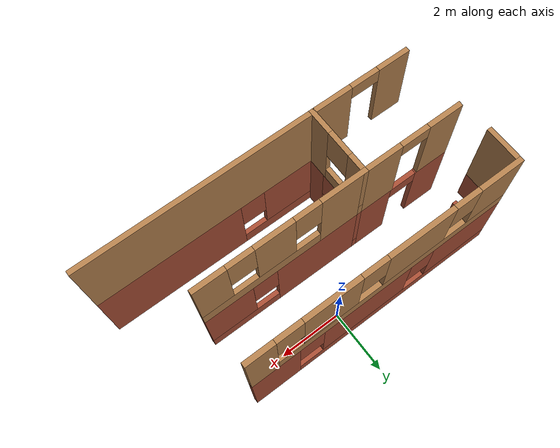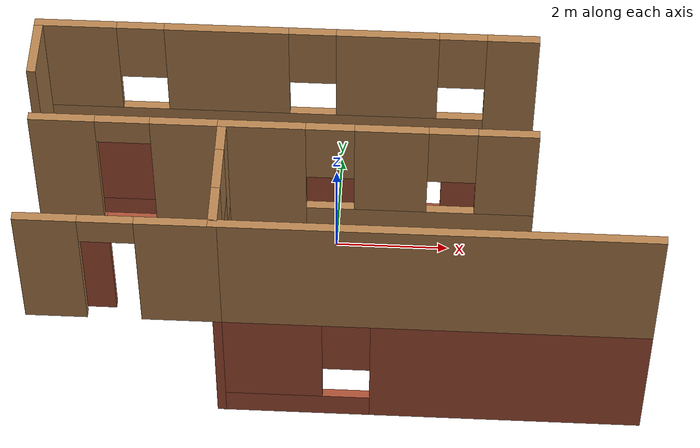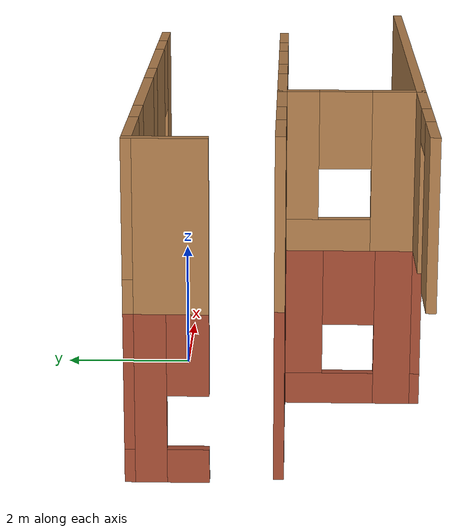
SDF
<sdf version="1.7">
 <model name="House">
  <pose>3.17663 -1.38106 0 0 -0 0</pose>
  <link name="Wall_10">
   <pose>-2.425 -0.166792 0 0 -0 0</pose>
   <visual name="Wall_10_Visual_0">
    <pose>-1.18064 0 1.25 0 -0 0</pose>
    <geometry><box><size>2.88872 0.15 2.5</size></box></geometry>
    <material>
     <script><uri>file://media/materials/scripts/gazebo.material</uri><name>Gazebo/Bricks</name></script>
     <ambient>0.921569 0.807843 0.615686 1</ambient>
    </material>
    <meta><layer>0</layer></meta>
   </visual>
   <collision name="Wall_10_Collision_0">
    <geometry><box><size>2.88872 0.15 2.5</size></box></geometry>
    <pose>-1.18064 0 1.25 0 -0 0</pose>
   </collision>
   <visual name="Wall_10_Visual_1">
    <pose>1.44436 0 0.25 0 -0 0</pose>
    <geometry><box><size>2.36128 0.15 0.5</size></box></geometry>
    <material>
     <script><uri>file://media/materials/scripts/gazebo.material</uri><name>Gazebo/Bricks</name></script>
     <ambient>0.921569 0.807843 0.615686 1</ambient>
    </material>
    <meta><layer>0</layer></meta>
   </visual>
   <collision name="Wall_10_Collision_1">
    <geometry><box><size>2.36128 0.15 0.5</size></box></geometry>
    <pose>1.44436 0 0.25 0 -0 0</pose>
   </collision>
   <visual name="Wall_10_Visual_2">
    <pose>1.84436 0 1.5 0 -0 0</pose>
    <geometry><box><size>1.56128 0.15 2</size></box></geometry>
    <material>
     <script><uri>file://media/materials/scripts/gazebo.material</uri><name>Gazebo/Bricks</name></script>
     <ambient>0.921569 0.807843 0.615686 1</ambient>
    </material>
    <meta><layer>0</layer></meta>
   </visual>
   <collision name="Wall_10_Collision_2">
    <geometry><box><size>1.56128 0.15 2</size></box></geometry>
    <pose>1.84436 0 1.5 0 -0 0</pose>
   </collision>
   <visual name="Wall_10_Visual_3">
    <pose>0.663719 0 1.9 0 -0 0</pose>
    <geometry><box><size>0.8 0.15 1.2</size></box></geometry>
    <material>
     <script><uri>file://media/materials/scripts/gazebo.material</uri><name>Gazebo/Bricks</name></script>
     <ambient>0.921569 0.807843 0.615686 1</ambient>
    </material>
    <meta><layer>0</layer></meta>
   </visual>
   <collision name="Wall_10_Collision_3">
    <geometry><box><size>0.8 0.15 1.2</size></box></geometry>
    <pose>0.663719 0 1.9 0 -0 0</pose>
   </collision>
  </link>
  <link name="Wall_12">
   <pose>-4.05 1.93321 0 0 -0 3.14159</pose>
   <visual name="Wall_12_Visual_0">
    <pose>-3.47696 0 1.25 0 -0 0</pose>
    <geometry><box><size>1.54607 0.15 2.5</size></box></geometry>
    <material>
     <script><uri>file://media/materials/scripts/gazebo.material</uri><name>Gazebo/Bricks</name></script>
     <ambient>1 0.764706 0.305882 1</ambient>
    </material>
    <meta><layer>0</layer></meta>
   </visual>
   <collision name="Wall_12_Collision_0">
    <geometry><box><size>1.54607 0.15 2.5</size></box></geometry>
    <pose>-3.47696 0 1.25 0 -0 0</pose>
   </collision>
   <visual name="Wall_12_Visual_1">
    <pose>0.773036 0 0.25 0 -0 0</pose>
    <geometry><box><size>6.95393 0.15 0.5</size></box></geometry>
    <material>
     <script><uri>file://media/materials/scripts/gazebo.material</uri><name>Gazebo/Bricks</name></script>
     <ambient>1 0.764706 0.305882 1</ambient>
    </material>
    <meta><layer>0</layer></meta>
   </visual>
   <collision name="Wall_12_Collision_1">
    <geometry><box><size>6.95393 0.15 0.5</size></box></geometry>
    <pose>0.773036 0 0.25 0 -0 0</pose>
   </collision>
   <visual name="Wall_12_Visual_2">
    <pose>-0.425647 0 1.5 0 -0 0</pose>
    <geometry><box><size>2.95656 0.15 2</size></box></geometry>
    <material>
     <script><uri>file://media/materials/scripts/gazebo.material</uri><name>Gazebo/Bricks</name></script>
     <ambient>1 0.764706 0.305882 1</ambient>
    </material>
    <meta><layer>0</layer></meta>
   </visual>
   <collision name="Wall_12_Collision_2">
    <geometry><box><size>2.95656 0.15 2</size></box></geometry>
    <pose>-0.425647 0 1.5 0 -0 0</pose>
   </collision>
   <visual name="Wall_12_Visual_3">
    <pose>3.05132 0 1.5 0 -0 0</pose>
    <geometry><box><size>2.39737 0.15 2</size></box></geometry>
    <material>
     <script><uri>file://media/materials/scripts/gazebo.material</uri><name>Gazebo/Bricks</name></script>
     <ambient>1 0.764706 0.305882 1</ambient>
    </material>
    <meta><layer>0</layer></meta>
   </visual>
   <collision name="Wall_12_Collision_3">
    <geometry><box><size>2.39737 0.15 2</size></box></geometry>
    <pose>3.05132 0 1.5 0 -0 0</pose>
   </collision>
   <visual name="Wall_12_Visual_4">
    <pose>-2.30393 0 1.9 0 -0 0</pose>
    <geometry><box><size>0.8 0.15 1.2</size></box></geometry>
    <material>
     <script><uri>file://media/materials/scripts/gazebo.material</uri><name>Gazebo/Bricks</name></script>
     <ambient>1 0.764706 0.305882 1</ambient>
    </material>
    <meta><layer>0</layer></meta>
   </visual>
   <collision name="Wall_12_Collision_4">
    <geometry><box><size>0.8 0.15 1.2</size></box></geometry>
    <pose>-2.30393 0 1.9 0 -0 0</pose>
   </collision>
   <visual name="Wall_12_Visual_5">
    <pose>1.45263 0 1.9 0 -0 0</pose>
    <geometry><box><size>0.8 0.15 1.2</size></box></geometry>
    <material>
     <script><uri>file://media/materials/scripts/gazebo.material</uri><name>Gazebo/Bricks</name></script>
     <ambient>1 0.764706 0.305882 1</ambient>
    </material>
    <meta><layer>0</layer></meta>
   </visual>
   <collision name="Wall_12_Collision_5">
    <geometry><box><size>0.8 0.15 1.2</size></box></geometry>
    <pose>1.45263 0 1.9 0 -0 0</pose>
   </collision>
  </link>
  <link name="Wall_13">
   <pose>-8.225 1.40821 0 0 -0 -1.5708</pose>
   <visual name="Wall_13_Visual_0">
    <pose>-0.298335 0 1.25 0 -0 0</pose>
    <geometry><box><size>0.60333 0.15 2.5</size></box></geometry>
    <material>
     <script><uri>file://media/materials/scripts/gazebo.material</uri><name>Gazebo/Bricks</name></script>
     <ambient>1 1 1 1</ambient>
    </material>
    <meta><layer>0</layer></meta>
   </visual>
   <collision name="Wall_13_Collision_0">
    <geometry><box><size>0.60333 0.15 2.5</size></box></geometry>
    <pose>-0.298335 0 1.25 0 -0 0</pose>
   </collision>
   <visual name="Wall_13_Visual_1">
    <pose>0.301665 0 0.25 0 -0 0</pose>
    <geometry><box><size>0.59667 0.15 0.5</size></box></geometry>
    <material>
     <script><uri>file://media/materials/scripts/gazebo.material</uri><name>Gazebo/Bricks</name></script>
     <ambient>1 1 1 1</ambient>
    </material>
    <meta><layer>0</layer></meta>
   </visual>
   <collision name="Wall_13_Collision_1">
    <geometry><box><size>0.59667 0.15 0.5</size></box></geometry>
    <pose>0.301665 0 0.25 0 -0 0</pose>
   </collision>
   <visual name="Wall_13_Visual_2">
    <pose>0.301665 0 1.9 0 -0 0</pose>
    <geometry><box><size>0.59667 0.15 1.2</size></box></geometry>
    <material>
     <script><uri>file://media/materials/scripts/gazebo.material</uri><name>Gazebo/Bricks</name></script>
     <ambient>1 1 1 1</ambient>
    </material>
    <meta><layer>0</layer></meta>
   </visual>
   <collision name="Wall_13_Collision_2">
    <geometry><box><size>0.59667 0.15 1.2</size></box></geometry>
    <pose>0.301665 0 1.9 0 -0 0</pose>
   </collision>
  </link>
  <link name="Wall_15">
   <pose>-6.525 -0.166792 0 0 -0 3.14159</pose>
   <visual name="Wall_15_Visual_0">
    <pose>-1.01638 0 1.25 0 -0 0</pose>
    <geometry><box><size>1.21725 0.15 2.5</size></box></geometry>
    <material>
     <script><uri>file://media/materials/scripts/gazebo.material</uri><name>Gazebo/Bricks</name></script>
     <ambient>1 1 1 1</ambient>
    </material>
    <meta><layer>0</layer></meta>
   </visual>
   <collision name="Wall_15_Collision_0">
    <geometry><box><size>1.21725 0.15 2.5</size></box></geometry>
    <pose>-1.01638 0 1.25 0 -0 0</pose>
   </collision>
   <visual name="Wall_15_Visual_1">
    <pose>1.05862 0 1.25 0 -0 0</pose>
    <geometry><box><size>1.13275 0.15 2.5</size></box></geometry>
    <material>
     <script><uri>file://media/materials/scripts/gazebo.material</uri><name>Gazebo/Bricks</name></script>
     <ambient>1 1 1 1</ambient>
    </material>
    <meta><layer>0</layer></meta>
   </visual>
   <collision name="Wall_15_Collision_1">
    <geometry><box><size>1.13275 0.15 2.5</size></box></geometry>
    <pose>1.05862 0 1.25 0 -0 0</pose>
   </collision>
   <visual name="Wall_15_Visual_2">
    <pose>0.042246 0 2.25 0 -0 0</pose>
    <geometry><box><size>0.9 0.15 0.5</size></box></geometry>
    <material>
     <script><uri>file://media/materials/scripts/gazebo.material</uri><name>Gazebo/Bricks</name></script>
     <ambient>1 1 1 1</ambient>
    </material>
    <meta><layer>0</layer></meta>
   </visual>
   <collision name="Wall_15_Collision_2">
    <geometry><box><size>0.9 0.15 0.5</size></box></geometry>
    <pose>0.042246 0 2.25 0 -0 0</pose>
   </collision>
  </link>
  <link name="Wall_34">
   <collision name="Wall_34_Collision">
    <geometry><box><size>7.25 0.15 2.5</size></box></geometry>
    <pose>0 0 1.25 0 -0 0</pose>
   </collision>
   <visual name="Wall_34_Visual">
    <pose>0 0 1.25 0 -0 0</pose>
    <geometry><box><size>7.25 0.15 2.5</size></box></geometry>
    <material>
     <script><uri>file://media/materials/scripts/gazebo.material</uri><name>Gazebo/Wood</name></script>
     <ambient>1 1 1 1</ambient>
    </material>
    <meta><layer>1</layer></meta>
   </visual>
   <pose>-1.425 -2.26679 2.5 0 -0 3.14159</pose>
  </link>
  <link name="Wall_35">
   <pose>-4.975 -1.21679 2.5 0 -0 1.5708</pose>
   <visual name="Wall_35_Visual_0">
    <pose>-0.72064 0 1.25 0 -0 0</pose>
    <geometry><box><size>0.808719 0.15 2.5</size></box></geometry>
    <material>
     <script><uri>file://media/materials/scripts/gazebo.material</uri><name>Gazebo/Wood</name></script>
     <ambient>1 1 1 1</ambient>
    </material>
    <meta><layer>1</layer></meta>
   </visual>
   <collision name="Wall_35_Collision_0">
    <geometry><box><size>0.808719 0.15 2.5</size></box></geometry>
    <pose>-0.72064 0 1.25 0 -0 0</pose>
   </collision>
   <visual name="Wall_35_Visual_1">
    <pose>0.40436 0 0.25 0 -0 0</pose>
    <geometry><box><size>1.44128 0.15 0.5</size></box></geometry>
    <material>
     <script><uri>file://media/materials/scripts/gazebo.material</uri><name>Gazebo/Wood</name></script>
     <ambient>1 1 1 1</ambient>
    </material>
    <meta><layer>1</layer></meta>
   </visual>
   <collision name="Wall_35_Collision_1">
    <geometry><box><size>1.44128 0.15 0.5</size></box></geometry>
    <pose>0.40436 0 0.25 0 -0 0</pose>
   </collision>
   <visual name="Wall_35_Visual_2">
    <pose>0.80436 0 1.5 0 -0 0</pose>
    <geometry><box><size>0.641281 0.15 2</size></box></geometry>
    <material>
     <script><uri>file://media/materials/scripts/gazebo.material</uri><name>Gazebo/Wood</name></script>
     <ambient>1 1 1 1</ambient>
    </material>
    <meta><layer>1</layer></meta>
   </visual>
   <collision name="Wall_35_Collision_2">
    <geometry><box><size>0.641281 0.15 2</size></box></geometry>
    <pose>0.80436 0 1.5 0 -0 0</pose>
   </collision>
   <visual name="Wall_35_Visual_3">
    <pose>0.083719 0 1.9 0 -0 0</pose>
    <geometry><box><size>0.8 0.15 1.2</size></box></geometry>
    <material>
     <script><uri>file://media/materials/scripts/gazebo.material</uri><name>Gazebo/Wood</name></script>
     <ambient>1 1 1 1</ambient>
    </material>
    <meta><layer>1</layer></meta>
   </visual>
   <collision name="Wall_35_Collision_3">
    <geometry><box><size>0.8 0.15 1.2</size></box></geometry>
    <pose>0.083719 0 1.9 0 -0 0</pose>
   </collision>
  </link>
  <link name="Wall_36">
   <pose>-2.425 -0.166792 2.5 0 -0 0</pose>
   <visual name="Wall_36_Visual_0">
    <pose>-1.90595 0 1.25 0 -0 0</pose>
    <geometry><box><size>1.43809 0.15 2.5</size></box></geometry>
    <material>
     <script><uri>file://media/materials/scripts/gazebo.material</uri><name>Gazebo/Wood</name></script>
     <ambient>1 1 1 1</ambient>
    </material>
    <meta><layer>1</layer></meta>
   </visual>
   <collision name="Wall_36_Collision_0">
    <geometry><box><size>1.43809 0.15 2.5</size></box></geometry>
    <pose>-1.90595 0 1.25 0 -0 0</pose>
   </collision>
   <visual name="Wall_36_Visual_1">
    <pose>0.719046 0 0.25 0 -0 0</pose>
    <geometry><box><size>3.81191 0.15 0.5</size></box></geometry>
    <material>
     <script><uri>file://media/materials/scripts/gazebo.material</uri><name>Gazebo/Wood</name></script>
     <ambient>1 1 1 1</ambient>
    </material>
    <meta><layer>1</layer></meta>
   </visual>
   <collision name="Wall_36_Collision_1">
    <geometry><box><size>3.81191 0.15 0.5</size></box></geometry>
    <pose>0.719046 0 0.25 0 -0 0</pose>
   </collision>
   <visual name="Wall_36_Visual_2">
    <pose>0.21877 0 1.5 0 -0 0</pose>
    <geometry><box><size>1.21136 0.15 2</size></box></geometry>
    <material>
     <script><uri>file://media/materials/scripts/gazebo.material</uri><name>Gazebo/Wood</name></script>
     <ambient>1 1 1 1</ambient>
    </material>
    <meta><layer>1</layer></meta>
   </visual>
   <collision name="Wall_36_Collision_2">
    <geometry><box><size>1.21136 0.15 2</size></box></geometry>
    <pose>0.21877 0 1.5 0 -0 0</pose>
   </collision>
   <visual name="Wall_36_Visual_3">
    <pose>2.12472 0 1.5 0 -0 0</pose>
    <geometry><box><size>1.00055 0.15 2</size></box></geometry>
    <material>
     <script><uri>file://media/materials/scripts/gazebo.material</uri><name>Gazebo/Wood</name></script>
     <ambient>1 1 1 1</ambient>
    </material>
    <meta><layer>1</layer></meta>
   </visual>
   <collision name="Wall_36_Collision_3">
    <geometry><box><size>1.00055 0.15 2</size></box></geometry>
    <pose>2.12472 0 1.5 0 -0 0</pose>
   </collision>
   <visual name="Wall_36_Visual_4">
    <pose>-0.786909 0 1.9 0 -0 0</pose>
    <geometry><box><size>0.8 0.15 1.2</size></box></geometry>
    <material>
     <script><uri>file://media/materials/scripts/gazebo.material</uri><name>Gazebo/Wood</name></script>
     <ambient>1 1 1 1</ambient>
    </material>
    <meta><layer>1</layer></meta>
   </visual>
   <collision name="Wall_36_Collision_4">
    <geometry><box><size>0.8 0.15 1.2</size></box></geometry>
    <pose>-0.786909 0 1.9 0 -0 0</pose>
   </collision>
   <visual name="Wall_36_Visual_5">
    <pose>1.22445 0 1.9 0 -0 0</pose>
    <geometry><box><size>0.8 0.15 1.2</size></box></geometry>
    <material>
     <script><uri>file://media/materials/scripts/gazebo.material</uri><name>Gazebo/Wood</name></script>
     <ambient>1 1 1 1</ambient>
    </material>
    <meta><layer>1</layer></meta>
   </visual>
   <collision name="Wall_36_Collision_5">
    <geometry><box><size>0.8 0.15 1.2</size></box></geometry>
    <pose>1.22445 0 1.9 0 -0 0</pose>
   </collision>
  </link>
  <link name="Wall_38">
   <pose>-4.05 1.93321 2.5 0 -0 3.14159</pose>
   <visual name="Wall_38_Visual_0">
    <pose>-3.81006 0 1.25 0 -0 0</pose>
    <geometry><box><size>0.87987 0.15 2.5</size></box></geometry>
    <material>
     <script><uri>file://media/materials/scripts/gazebo.material</uri><name>Gazebo/Wood</name></script>
     <ambient>1 1 1 1</ambient>
    </material>
    <meta><layer>1</layer></meta>
   </visual>
   <collision name="Wall_38_Collision_0">
    <geometry><box><size>0.87987 0.15 2.5</size></box></geometry>
    <pose>-3.81006 0 1.25 0 -0 0</pose>
   </collision>
   <visual name="Wall_38_Visual_1">
    <pose>0.439935 0 0.25 0 -0 0</pose>
    <geometry><box><size>7.62013 0.15 0.5</size></box></geometry>
    <material>
     <script><uri>file://media/materials/scripts/gazebo.material</uri><name>Gazebo/Wood</name></script>
     <ambient>1 1 1 1</ambient>
    </material>
    <meta><layer>1</layer></meta>
   </visual>
   <collision name="Wall_38_Collision_1">
    <geometry><box><size>7.62013 0.15 0.5</size></box></geometry>
    <pose>0.439935 0 0.25 0 -0 0</pose>
   </collision>
   <visual name="Wall_38_Visual_2">
    <pose>-1.70297 0 1.5 0 -0 0</pose>
    <geometry><box><size>1.73431 0.15 2</size></box></geometry>
    <material>
     <script><uri>file://media/materials/scripts/gazebo.material</uri><name>Gazebo/Wood</name></script>
     <ambient>1 1 1 1</ambient>
    </material>
    <meta><layer>1</layer></meta>
   </visual>
   <collision name="Wall_38_Collision_2">
    <geometry><box><size>1.73431 0.15 2</size></box></geometry>
    <pose>-1.70297 0 1.5 0 -0 0</pose>
   </collision>
   <visual name="Wall_38_Visual_3">
    <pose>1.01236 0 1.5 0 -0 0</pose>
    <geometry><box><size>2.09635 0.15 2</size></box></geometry>
    <material>
     <script><uri>file://media/materials/scripts/gazebo.material</uri><name>Gazebo/Wood</name></script>
     <ambient>1 1 1 1</ambient>
    </material>
    <meta><layer>1</layer></meta>
   </visual>
   <collision name="Wall_38_Collision_3">
    <geometry><box><size>2.09635 0.15 2</size></box></geometry>
    <pose>1.01236 0 1.5 0 -0 0</pose>
   </collision>
   <visual name="Wall_38_Visual_4">
    <pose>3.55527 0 1.5 0 -0 0</pose>
    <geometry><box><size>1.38946 0.15 2</size></box></geometry>
    <material>
     <script><uri>file://media/materials/scripts/gazebo.material</uri><name>Gazebo/Wood</name></script>
     <ambient>1 1 1 1</ambient>
    </material>
    <meta><layer>1</layer></meta>
   </visual>
   <collision name="Wall_38_Collision_4">
    <geometry><box><size>1.38946 0.15 2</size></box></geometry>
    <pose>3.55527 0 1.5 0 -0 0</pose>
   </collision>
   <visual name="Wall_38_Visual_5">
    <pose>-2.97013 0 1.9 0 -0 0</pose>
    <geometry><box><size>0.8 0.15 1.2</size></box></geometry>
    <material>
     <script><uri>file://media/materials/scripts/gazebo.material</uri><name>Gazebo/Wood</name></script>
     <ambient>1 1 1 1</ambient>
    </material>
    <meta><layer>1</layer></meta>
   </visual>
   <collision name="Wall_38_Collision_5">
    <geometry><box><size>0.8 0.15 1.2</size></box></geometry>
    <pose>-2.97013 0 1.9 0 -0 0</pose>
   </collision>
   <visual name="Wall_38_Visual_6">
    <pose>-0.43582 0 1.9 0 -0 0</pose>
    <geometry><box><size>0.8 0.15 1.2</size></box></geometry>
    <material>
     <script><uri>file://media/materials/scripts/gazebo.material</uri><name>Gazebo/Wood</name></script>
     <ambient>1 1 1 1</ambient>
    </material>
    <meta><layer>1</layer></meta>
   </visual>
   <collision name="Wall_38_Collision_6">
    <geometry><box><size>0.8 0.15 1.2</size></box></geometry>
    <pose>-0.43582 0 1.9 0 -0 0</pose>
   </collision>
   <visual name="Wall_38_Visual_7">
    <pose>2.46054 0 1.9 0 -0 0</pose>
    <geometry><box><size>0.8 0.15 1.2</size></box></geometry>
    <material>
     <script><uri>file://media/materials/scripts/gazebo.material</uri><name>Gazebo/Wood</name></script>
     <ambient>1 1 1 1</ambient>
    </material>
    <meta><layer>1</layer></meta>
   </visual>
   <collision name="Wall_38_Collision_7">
    <geometry><box><size>0.8 0.15 1.2</size></box></geometry>
    <pose>2.46054 0 1.9 0 -0 0</pose>
   </collision>
  </link>
  <link name="Wall_39">
   <collision name="Wall_39_Collision">
    <geometry><box><size>1.2 0.15 2.5</size></box></geometry>
    <pose>0 0 1.25 0 -0 0</pose>
   </collision>
   <visual name="Wall_39_Visual">
    <pose>0 0 1.25 0 -0 0</pose>
    <geometry><box><size>1.2 0.15 2.5</size></box></geometry>
    <material>
     <script><uri>file://media/materials/scripts/gazebo.material</uri><name>Gazebo/Wood</name></script>
     <ambient>1 1 1 1</ambient>
    </material>
    <meta><layer>1</layer></meta>
   </visual>
   <pose>-8.225 1.40821 2.5 0 -0 -1.5708</pose>
  </link>
  <link name="Wall_40">
   <pose>-6.525 -0.166792 2.5 0 -0 3.14159</pose>
   <visual name="Wall_40_Visual_0">
    <pose>-0.994449 0 1.25 0 -0 0</pose>
    <geometry><box><size>1.2611 0.15 2.5</size></box></geometry>
    <material>
     <script><uri>file://media/materials/scripts/gazebo.material</uri><name>Gazebo/Wood</name></script>
     <ambient>1 1 1 1</ambient>
    </material>
    <meta><layer>1</layer></meta>
   </visual>
   <collision name="Wall_40_Collision_0">
    <geometry><box><size>1.2611 0.15 2.5</size></box></geometry>
    <pose>-0.994449 0 1.25 0 -0 0</pose>
   </collision>
   <visual name="Wall_40_Visual_1">
    <pose>1.08055 0 1.25 0 -0 0</pose>
    <geometry><box><size>1.0889 0.15 2.5</size></box></geometry>
    <material>
     <script><uri>file://media/materials/scripts/gazebo.material</uri><name>Gazebo/Wood</name></script>
     <ambient>1 1 1 1</ambient>
    </material>
    <meta><layer>1</layer></meta>
   </visual>
   <collision name="Wall_40_Collision_1">
    <geometry><box><size>1.0889 0.15 2.5</size></box></geometry>
    <pose>1.08055 0 1.25 0 -0 0</pose>
   </collision>
   <visual name="Wall_40_Visual_2">
    <pose>0.086103 0 2.25 0 -0 0</pose>
    <geometry><box><size>0.9 0.15 0.5</size></box></geometry>
    <material>
     <script><uri>file://media/materials/scripts/gazebo.material</uri><name>Gazebo/Wood</name></script>
     <ambient>1 1 1 1</ambient>
    </material>
    <meta><layer>1</layer></meta>
   </visual>
   <collision name="Wall_40_Collision_2">
    <geometry><box><size>0.9 0.15 0.5</size></box></geometry>
    <pose>0.086103 0 2.25 0 -0 0</pose>
   </collision>
  </link>
  <link name="Wall_41">
   <pose>-6.525 -2.26679 2.5 0 -0 3.14159</pose>
   <visual name="Wall_41_Visual_0">
    <pose>-0.964278 0 1.25 0 -0 0</pose>
    <geometry><box><size>1.32144 0.15 2.5</size></box></geometry>
    <material>
     <script><uri>file://media/materials/scripts/gazebo.material</uri><name>Gazebo/Wood</name></script>
     <ambient>1 1 1 1</ambient>
    </material>
    <meta><layer>1</layer></meta>
   </visual>
   <collision name="Wall_41_Collision_0">
    <geometry><box><size>1.32144 0.15 2.5</size></box></geometry>
    <pose>-0.964278 0 1.25 0 -0 0</pose>
   </collision>
   <visual name="Wall_41_Visual_1">
    <pose>1.11072 0 1.25 0 -0 0</pose>
    <geometry><box><size>1.02856 0.15 2.5</size></box></geometry>
    <material>
     <script><uri>file://media/materials/scripts/gazebo.material</uri><name>Gazebo/Wood</name></script>
     <ambient>1 1 1 1</ambient>
    </material>
    <meta><layer>1</layer></meta>
   </visual>
   <collision name="Wall_41_Collision_1">
    <geometry><box><size>1.02856 0.15 2.5</size></box></geometry>
    <pose>1.11072 0 1.25 0 -0 0</pose>
   </collision>
   <visual name="Wall_41_Visual_2">
    <pose>0.146443 0 2.25 0 -0 0</pose>
    <geometry><box><size>0.9 0.15 0.5</size></box></geometry>
    <material>
     <script><uri>file://media/materials/scripts/gazebo.material</uri><name>Gazebo/Wood</name></script>
     <ambient>1 1 1 1</ambient>
    </material>
    <meta><layer>1</layer></meta>
   </visual>
   <collision name="Wall_41_Collision_2">
    <geometry><box><size>0.9 0.15 0.5</size></box></geometry>
    <pose>0.146443 0 2.25 0 -0 0</pose>
   </collision>
  </link>
  <link name="Wall_8">
   <pose>-1.425 -2.26679 0 0 -0 3.14159</pose>
   <visual name="Wall_8_Visual_0">
    <pose>-1.30161 0 1.25 0 -0 0</pose>
    <geometry><box><size>4.64677 0.15 2.5</size></box></geometry>
    <material>
     <script><uri>file://media/materials/scripts/gazebo.material</uri><name>Gazebo/Bricks</name></script>
     <ambient>0.760784 0.662745 0.627451 1</ambient>
    </material>
    <meta><layer>0</layer></meta>
   </visual>
   <collision name="Wall_8_Collision_0">
    <geometry><box><size>4.64677 0.15 2.5</size></box></geometry>
    <pose>-1.30161 0 1.25 0 -0 0</pose>
   </collision>
   <visual name="Wall_8_Visual_1">
    <pose>2.32339 0 0.25 0 -0 0</pose>
    <geometry><box><size>2.60323 0.15 0.5</size></box></geometry>
    <material>
     <script><uri>file://media/materials/scripts/gazebo.material</uri><name>Gazebo/Bricks</name></script>
     <ambient>0.760784 0.662745 0.627451 1</ambient>
    </material>
    <meta><layer>0</layer></meta>
   </visual>
   <collision name="Wall_8_Collision_1">
    <geometry><box><size>2.60323 0.15 0.5</size></box></geometry>
    <pose>2.32339 0 0.25 0 -0 0</pose>
   </collision>
   <visual name="Wall_8_Visual_2">
    <pose>2.72339 0 1.5 0 -0 0</pose>
    <geometry><box><size>1.80323 0.15 2</size></box></geometry>
    <material>
     <script><uri>file://media/materials/scripts/gazebo.material</uri><name>Gazebo/Bricks</name></script>
     <ambient>0.760784 0.662745 0.627451 1</ambient>
    </material>
    <meta><layer>0</layer></meta>
   </visual>
   <collision name="Wall_8_Collision_2">
    <geometry><box><size>1.80323 0.15 2</size></box></geometry>
    <pose>2.72339 0 1.5 0 -0 0</pose>
   </collision>
   <visual name="Wall_8_Visual_3">
    <pose>1.42177 0 1.9 0 -0 0</pose>
    <geometry><box><size>0.8 0.15 1.2</size></box></geometry>
    <material>
     <script><uri>file://media/materials/scripts/gazebo.material</uri><name>Gazebo/Bricks</name></script>
     <ambient>0.760784 0.662745 0.627451 1</ambient>
    </material>
    <meta><layer>0</layer></meta>
   </visual>
   <collision name="Wall_8_Collision_3">
    <geometry><box><size>0.8 0.15 1.2</size></box></geometry>
    <pose>1.42177 0 1.9 0 -0 0</pose>
   </collision>
  </link>
  <link name="Wall_9">
   <pose>-4.975 -1.21679 0 0 -0 1.5708</pose>
   <visual name="Wall_9_Visual_0">
    <pose>-0.761904 0 1.25 0 -0 0</pose>
    <geometry><box><size>0.726193 0.15 2.5</size></box></geometry>
    <material>
     <script><uri>file://media/materials/scripts/gazebo.material</uri><name>Gazebo/Bricks</name></script>
     <ambient>1 0.764706 0.305882 1</ambient>
    </material>
    <meta><layer>0</layer></meta>
   </visual>
   <collision name="Wall_9_Collision_0">
    <geometry><box><size>0.726193 0.15 2.5</size></box></geometry>
    <pose>-0.761904 0 1.25 0 -0 0</pose>
   </collision>
   <visual name="Wall_9_Visual_1">
    <pose>0.363096 0 0.25 0 -0 0</pose>
    <geometry><box><size>1.52381 0.15 0.5</size></box></geometry>
    <material>
     <script><uri>file://media/materials/scripts/gazebo.material</uri><name>Gazebo/Bricks</name></script>
     <ambient>1 0.764706 0.305882 1</ambient>
    </material>
    <meta><layer>0</layer></meta>
   </visual>
   <collision name="Wall_9_Collision_1">
    <geometry><box><size>1.52381 0.15 0.5</size></box></geometry>
    <pose>0.363096 0 0.25 0 -0 0</pose>
   </collision>
   <visual name="Wall_9_Visual_2">
    <pose>0.763096 0 1.5 0 -0 0</pose>
    <geometry><box><size>0.723807 0.15 2</size></box></geometry>
    <material>
     <script><uri>file://media/materials/scripts/gazebo.material</uri><name>Gazebo/Bricks</name></script>
     <ambient>1 0.764706 0.305882 1</ambient>
    </material>
    <meta><layer>0</layer></meta>
   </visual>
   <collision name="Wall_9_Collision_2">
    <geometry><box><size>0.723807 0.15 2</size></box></geometry>
    <pose>0.763096 0 1.5 0 -0 0</pose>
   </collision>
   <visual name="Wall_9_Visual_3">
    <pose>0.001193 0 1.9 0 -0 0</pose>
    <geometry><box><size>0.8 0.15 1.2</size></box></geometry>
    <material>
     <script><uri>file://media/materials/scripts/gazebo.material</uri><name>Gazebo/Bricks</name></script>
     <ambient>1 0.764706 0.305882 1</ambient>
    </material>
    <meta><layer>0</layer></meta>
   </visual>
   <collision name="Wall_9_Collision_3">
    <geometry><box><size>0.8 0.15 1.2</size></box></geometry>
    <pose>0.001193 0 1.9 0 -0 0</pose>
   </collision>
  </link>
  <static>1</static>
 </model>
</sdf>
